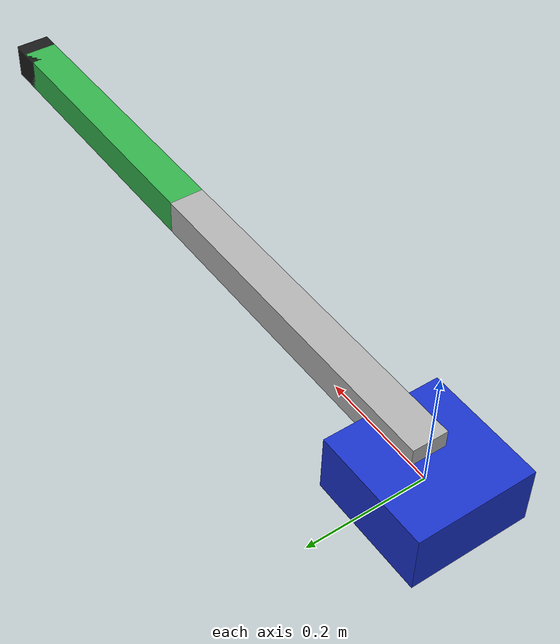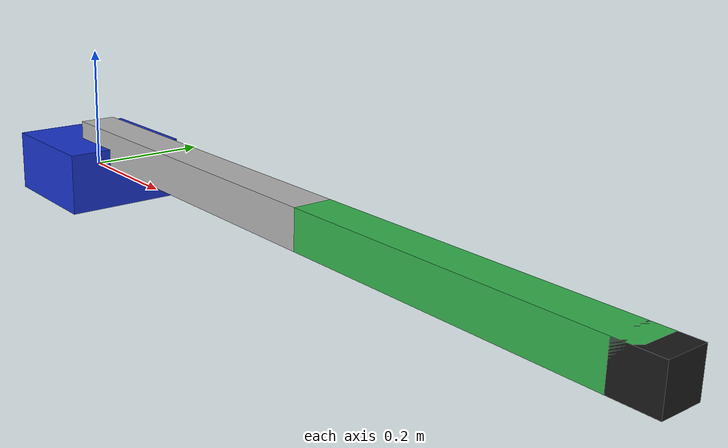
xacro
<?xml version="1.0"?>
<robot name="simple_arm" xmlns:xacro="http://www.ros.org/wiki/xacro">

  <xacro:arg name="controllers_file" default=""/>

  <xacro:property name="link1_len" value="0.6"/>
  <xacro:property name="link2_len" value="0.5"/>
  <xacro:property name="link_w" value="0.06"/>
  <xacro:property name="link_h" value="0.06"/>

  <link name="base_link">
    <visual>
      <geometry>
        <box size="0.2 0.2 0.1"/>
      </geometry>
      <material name="blue">
        <color rgba="0.1 0.2 0.8 1.0"/>
      </material>
    </visual>
    <collision>
      <geometry>
        <box size="0.2 0.2 0.1"/>
      </geometry>
    </collision>
    <inertial>
      <mass value="3.0"/>
      <origin xyz="0 0 0" rpy="0 0 0"/>
      <inertia ixx="0.02" ixy="0" ixz="0" iyy="0.02" iyz="0" izz="0.02"/>
    </inertial>
  </link>

  <link name="link_1">
    <visual>
      <origin xyz="${link1_len/2.0} 0 0" rpy="0 0 0"/>
      <geometry>
        <box size="${link1_len} ${link_w} ${link_h}"/>
      </geometry>
      <material name="gray">
        <color rgba="0.7 0.7 0.7 1.0"/>
      </material>
    </visual>
    <collision>
      <origin xyz="${link1_len/2.0} 0 0" rpy="0 0 0"/>
      <geometry>
        <box size="${link1_len} ${link_w} ${link_h}"/>
      </geometry>
    </collision>
    <inertial>
      <origin xyz="${link1_len/2.0} 0 0" rpy="0 0 0"/>
      <mass value="1.5"/>
      <inertia ixx="0.01" ixy="0" ixz="0" iyy="0.08" iyz="0" izz="0.08"/>
    </inertial>
  </link>

  <joint name="joint_1" type="revolute">
    <parent link="base_link"/>
    <child link="link_1"/>
    <origin xyz="0 0 0.05" rpy="0 0 0"/>
    <axis xyz="0 1 0"/>
    <limit lower="-1.57" upper="1.57" effort="20" velocity="2.0"/>
  </joint>

  <link name="link_2">
    <visual>
      <origin xyz="${link2_len/2.0} 0 0" rpy="0 0 0"/>
      <geometry>
        <box size="${link2_len} ${link_w} ${link_h}"/>
      </geometry>
      <material name="green">
        <color rgba="0.2 0.7 0.3 1.0"/>
      </material>
    </visual>
    <collision>
      <origin xyz="${link2_len/2.0} 0 0" rpy="0 0 0"/>
      <geometry>
        <box size="${link2_len} ${link_w} ${link_h}"/>
      </geometry>
    </collision>
    <inertial>
      <origin xyz="${link2_len/2.0} 0 0" rpy="0 0 0"/>
      <mass value="1.0"/>
      <inertia ixx="0.01" ixy="0" ixz="0" iyy="0.05" iyz="0" izz="0.05"/>
    </inertial>
  </link>

  <joint name="joint_2" type="revolute">
    <parent link="link_1"/>
    <child link="link_2"/>
    <origin xyz="${link1_len} 0 0" rpy="0 0 0"/>
    <axis xyz="0 1 0"/>
    <limit lower="-1.57" upper="1.57" effort="20" velocity="2.0"/>
  </joint>

  <link name="camera_link">
    <visual>
      <geometry>
        <box size="0.06 0.06 0.06"/>
      </geometry>
      <material name="black">
        <color rgba="0.1 0.1 0.1 1.0"/>
      </material>
    </visual>
    <collision>
      <geometry>
        <box size="0.06 0.06 0.06"/>
      </geometry>
    </collision>
    <inertial>
      <mass value="0.1"/>
      <origin xyz="0 0 0" rpy="0 0 0"/>
      <inertia ixx="0.0002" ixy="0" ixz="0" iyy="0.0002" iyz="0" izz="0.0002"/>
    </inertial>
  </link>

  <joint name="camera_joint" type="fixed">
    <parent link="link_2"/>
    <child link="camera_link"/>
    <origin xyz="${link2_len} 0 0" rpy="0 0 0"/>
  </joint>

  <link name="camera_optical_link"/>

  <joint name="camera_optical_joint" type="fixed">
    <parent link="camera_link"/>
    <child link="camera_optical_link"/>
    <origin xyz="0 0 0" rpy="-1.5708 0 -1.5708"/>
  </joint>

  <ros2_control name="GazeboSystem" type="system">
    <hardware>
      <plugin>gazebo_ros2_control/GazeboSystem</plugin>
    </hardware>

    <joint name="joint_1">
      <command_interface name="position"/>
      <state_interface name="position"/>
      <state_interface name="velocity"/>
    </joint>

    <joint name="joint_2">
      <command_interface name="position"/>
      <state_interface name="position"/>
      <state_interface name="velocity"/>
    </joint>
  </ros2_control>

  <gazebo>
    <plugin filename="libgazebo_ros2_control.so" name="gazebo_ros2_control">
      <parameters>$(arg controllers_file)</parameters>
    </plugin>
  </gazebo>

  <gazebo reference="camera_link">
    <sensor name="rgb_camera_sensor" type="camera">
      <always_on>true</always_on>
      <visualize>true</visualize>
      <update_rate>20.0</update_rate>
      <camera>
        <horizontal_fov>1.047</horizontal_fov>
        <image>
          <width>640</width>
          <height>480</height>
          <format>R8G8B8</format>
        </image>
        <clip>
          <near>0.05</near>
          <far>50.0</far>
        </clip>
      </camera>
      <plugin name="rgb_camera_controller" filename="libgazebo_ros_camera.so">
        <frame_name>camera_optical_link</frame_name>
        <camera_name>rgb_camera</camera_name>
      </plugin>
    </sensor>
  </gazebo>

</robot>
